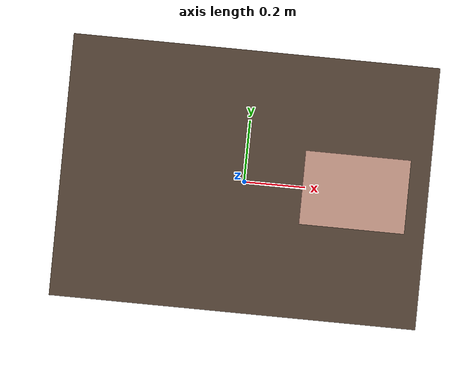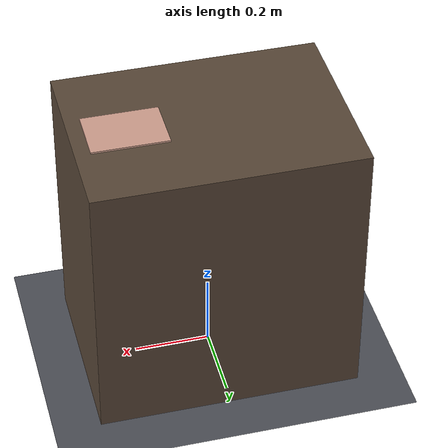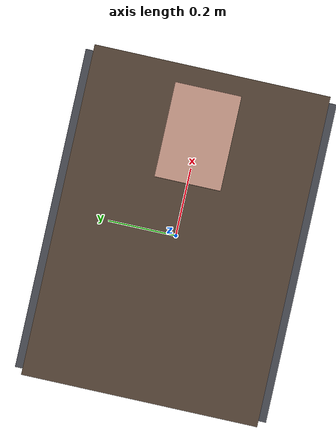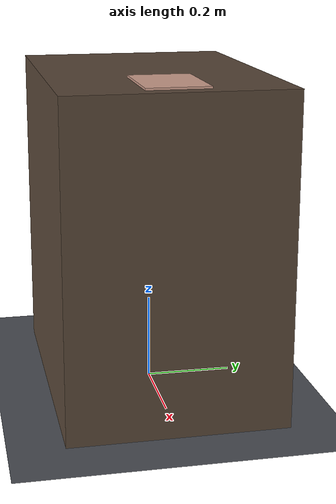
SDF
<?xml version="1.0" ?>
<sdf version="1.8">
  <world name="studio">

    <physics name="1ms" type="ignored">
      <max_step_size>0.001</max_step_size>
      <real_time_factor>1.0</real_time_factor>
    </physics>

    <plugin filename="gz-sim-physics-system" name="gz::sim::systems::Physics"/>
    <plugin filename="gz-sim-user-commands-system" name="gz::sim::systems::UserCommands"/>
    <plugin filename="gz-sim-scene-broadcaster-system" name="gz::sim::systems::SceneBroadcaster"/>
    <plugin filename="gz-sim-contact-system" name="gz::sim::systems::Contact"/>

    <gravity>0 0 -9.8066</gravity>

    <scene>
      <ambient>0.45 0.45 0.50 1</ambient>
      <background>0.12 0.13 0.16 1</background>
      <grid>false</grid>
      <shadows>true</shadows>
    </scene>

    <light type="directional" name="sun">
      <cast_shadows>true</cast_shadows>
      <pose>0 0 10 0 0 0</pose>
      <diffuse>0.9 0.9 0.9 1</diffuse>
      <specular>0.25 0.25 0.25 1</specular>
      <attenuation>
        <range>1000</range>
        <constant>0.9</constant>
        <linear>0.01</linear>
        <quadratic>0.001</quadratic>
      </attenuation>
      <direction>-0.4 0.3 -0.9</direction>
    </light>

    <model name="ground_plane">
      <static>true</static>
      <link name="link">
        <collision name="collision">
          <geometry>
            <plane>
              <normal>0 0 1</normal>
              <size>20 20</size>
            </plane>
          </geometry>
        </collision>
        <visual name="visual">
          <geometry>
            <plane>
              <normal>0 0 1</normal>
              <size>20 20</size>
            </plane>
          </geometry>
          <material>
            <ambient>0.22 0.23 0.25 1</ambient>
            <diffuse>0.30 0.31 0.34 1</diffuse>
            <specular>0.05 0.05 0.05 1</specular>
          </material>
        </visual>
      </link>
    </model>

    <model name="bench">
      <static>true</static>
      <pose>0 0 0.375 0 0 0</pose>
      <link name="link">
        <collision name="collision">
          <geometry>
            <box><size>0.70 0.50 0.75</size></box>
          </geometry>
        </collision>
        <visual name="visual">
          <geometry>
            <box><size>0.70 0.50 0.75</size></box>
          </geometry>
          <material>
            <ambient>0.18 0.16 0.14 1</ambient>
            <diffuse>0.35 0.28 0.22 1</diffuse>
          </material>
        </visual>
      </link>
    </model>

    <model name="work_surface">
      <static>true</static>
      <pose>0.21 0.0 0.7525 0 0 0</pose>
      <link name="link">
        <visual name="visual">
          <geometry>
            <box><size>0.20 0.14 0.005</size></box>
          </geometry>
          <material>
            <ambient>0.55 0.42 0.38 1</ambient>
            <diffuse>0.82 0.63 0.56 1</diffuse>
            <specular>0.1 0.1 0.1 1</specular>
          </material>
        </visual>
      </link>
    </model>

    <gui fullscreen="0">

      <plugin filename="MinimalScene" name="3D View">
        <ignition-gui>
          <title>3D View</title>
          <property type="bool" key="showTitleBar">false</property>
          <property type="string" key="state">docked</property>
        </ignition-gui>
        <engine>ogre2</engine>
        <scene>scene</scene>
        <ambient_light>0.45 0.45 0.50</ambient_light>
        <background_color>0.12 0.13 0.16</background_color>
        <camera_pose>1.20 -1.00 1.25 0 0.30 2.42</camera_pose>
      </plugin>

      <plugin filename="GzSceneManager" name="Scene Manager">
        <ignition-gui>
          <property key="resizable" type="bool">false</property>
          <property key="showTitleBar" type="bool">false</property>
          <property key="state" type="string">floating</property>
          <property key="width" type="double">5</property>
          <property key="height" type="double">5</property>
          <property key="cardBackground" type="string">#00000000</property>
        </ignition-gui>
      </plugin>

      <plugin filename="InteractiveViewControl" name="Interactive view control">
        <ignition-gui>
          <property key="resizable" type="bool">false</property>
          <property key="showTitleBar" type="bool">false</property>
          <property key="state" type="string">floating</property>
          <property key="width" type="double">5</property>
          <property key="height" type="double">5</property>
          <property key="cardBackground" type="string">#00000000</property>
        </ignition-gui>
      </plugin>

      <plugin filename="CameraTracking" name="Camera Tracking">
        <ignition-gui>
          <property key="resizable" type="bool">false</property>
          <property key="showTitleBar" type="bool">false</property>
          <property key="state" type="string">floating</property>
          <property key="width" type="double">5</property>
          <property key="height" type="double">5</property>
          <property key="cardBackground" type="string">#00000000</property>
        </ignition-gui>
      </plugin>

      <plugin filename="EntityContextMenuPlugin" name="Entity context menu">
        <ignition-gui>
          <property key="resizable" type="bool">false</property>
          <property key="showTitleBar" type="bool">false</property>
          <property key="state" type="string">floating</property>
          <property key="width" type="double">5</property>
          <property key="height" type="double">5</property>
          <property key="cardBackground" type="string">#00000000</property>
        </ignition-gui>
      </plugin>

      <plugin filename="SelectEntities" name="Select Entities">
        <ignition-gui>
          <property key="resizable" type="bool">false</property>
          <property key="showTitleBar" type="bool">false</property>
          <property key="state" type="string">floating</property>
          <property key="width" type="double">5</property>
          <property key="height" type="double">5</property>
          <property key="cardBackground" type="string">#00000000</property>
        </ignition-gui>
      </plugin>

      <plugin filename="MarkerManager" name="Marker manager">
        <ignition-gui>
          <property key="resizable" type="bool">false</property>
          <property key="showTitleBar" type="bool">false</property>
          <property key="state" type="string">floating</property>
          <property key="width" type="double">5</property>
          <property key="height" type="double">5</property>
          <property key="cardBackground" type="string">#00000000</property>
        </ignition-gui>
      </plugin>

      <plugin filename="VisualizationCapabilities" name="Visualization Capabilities">
        <ignition-gui>
          <property key="resizable" type="bool">false</property>
          <property key="showTitleBar" type="bool">false</property>
          <property key="state" type="string">floating</property>
          <property key="width" type="double">5</property>
          <property key="height" type="double">5</property>
          <property key="cardBackground" type="string">#00000000</property>
        </ignition-gui>
      </plugin>

      <plugin filename="WorldControl" name="World control">
        <ignition-gui>
          <title>World control</title>
          <property type="bool" key="showTitleBar">false</property>
          <property type="bool" key="resizable">false</property>
          <property type="double" key="height">72</property>
          <property type="double" key="width">121</property>
          <property type="double" key="z">1</property>
          <property type="string" key="state">floating</property>
          <anchors target="3D View">
            <line own="left" target="left"/>
            <line own="bottom" target="bottom"/>
          </anchors>
        </ignition-gui>
        <play_pause>true</play_pause>
        <step>true</step>
        <start_paused>false</start_paused>
        <use_event>true</use_event>
      </plugin>

      <plugin filename="WorldStats" name="World stats">
        <ignition-gui>
          <title>World stats</title>
          <property type="bool" key="showTitleBar">false</property>
          <property type="bool" key="resizable">false</property>
          <property type="double" key="height">110</property>
          <property type="double" key="width">290</property>
          <property type="double" key="z">1</property>
          <property type="string" key="state">floating</property>
          <anchors target="3D View">
            <line own="right" target="right"/>
            <line own="bottom" target="bottom"/>
          </anchors>
        </ignition-gui>
        <sim_time>true</sim_time>
        <real_time>true</real_time>
        <real_time_factor>true</real_time_factor>
        <iterations>true</iterations>
      </plugin>

      <plugin filename="EntityTree" name="Entity tree"/>

    </gui>

  </world>
</sdf>
